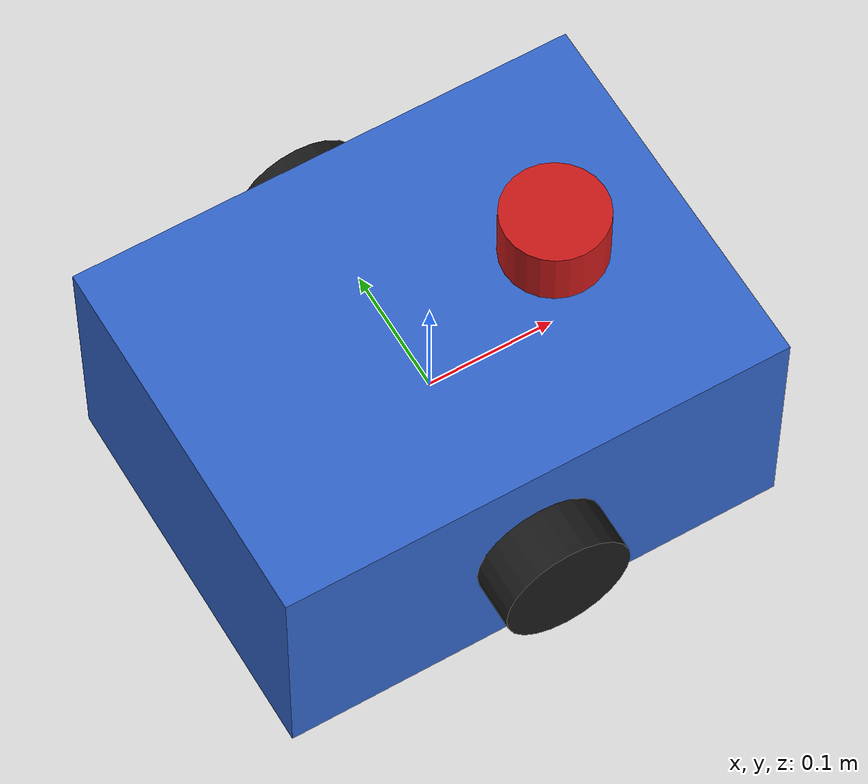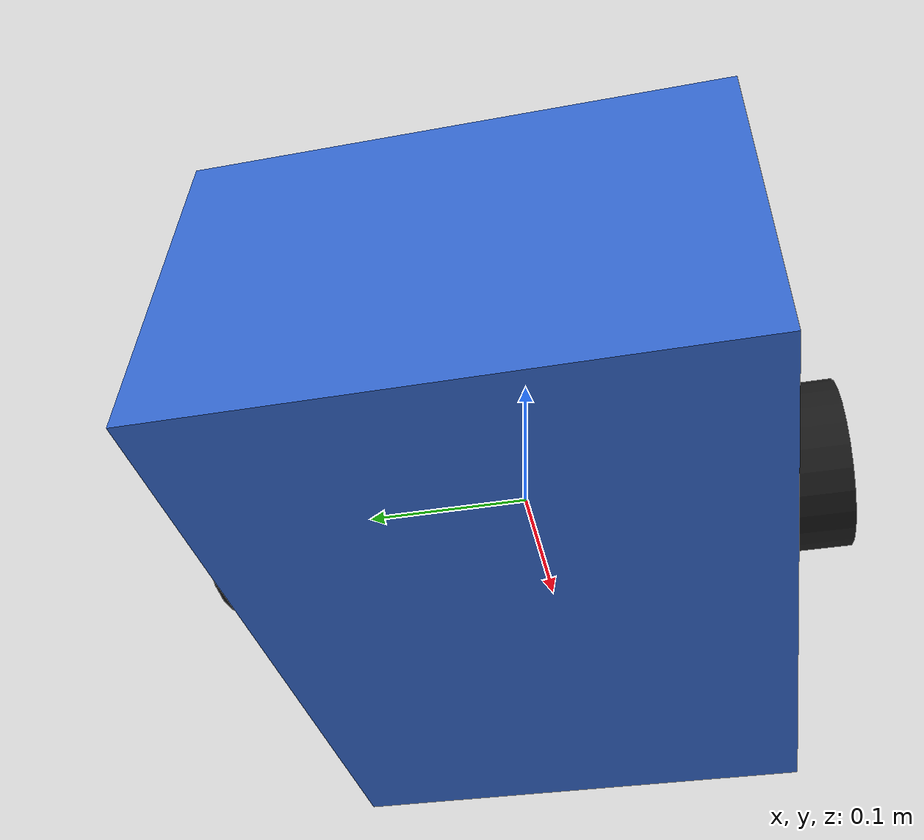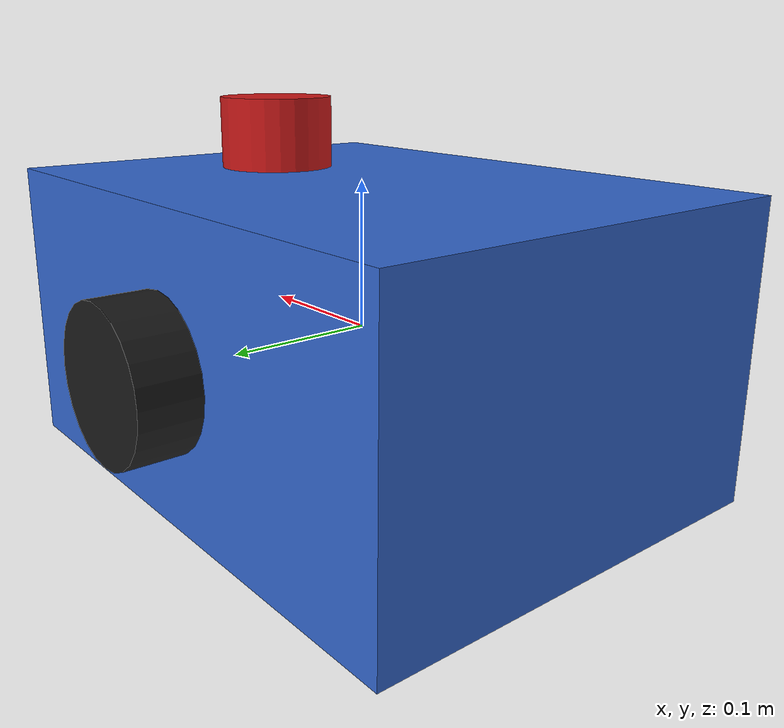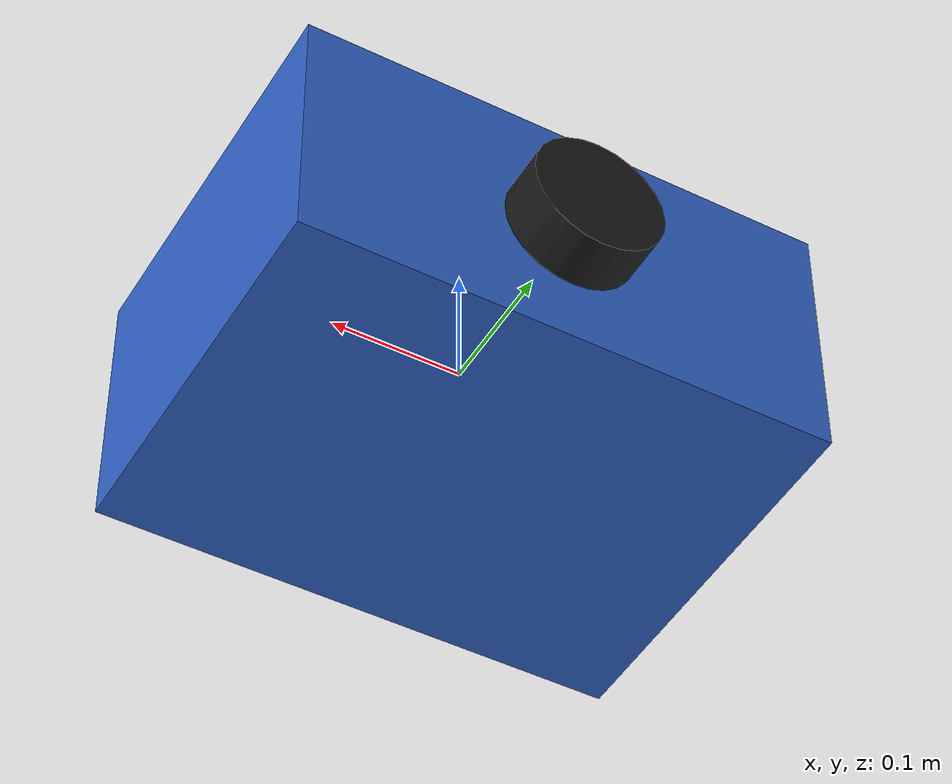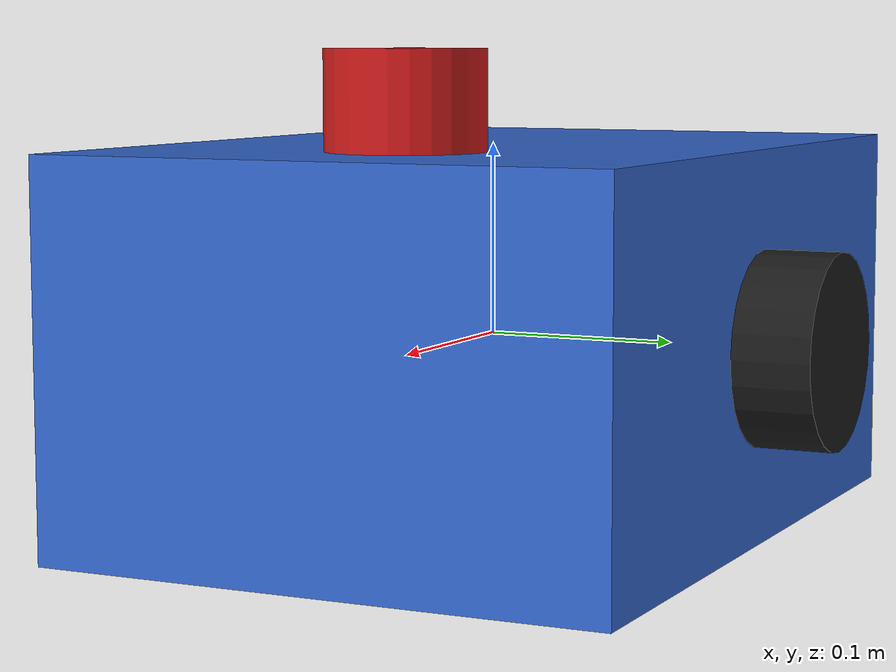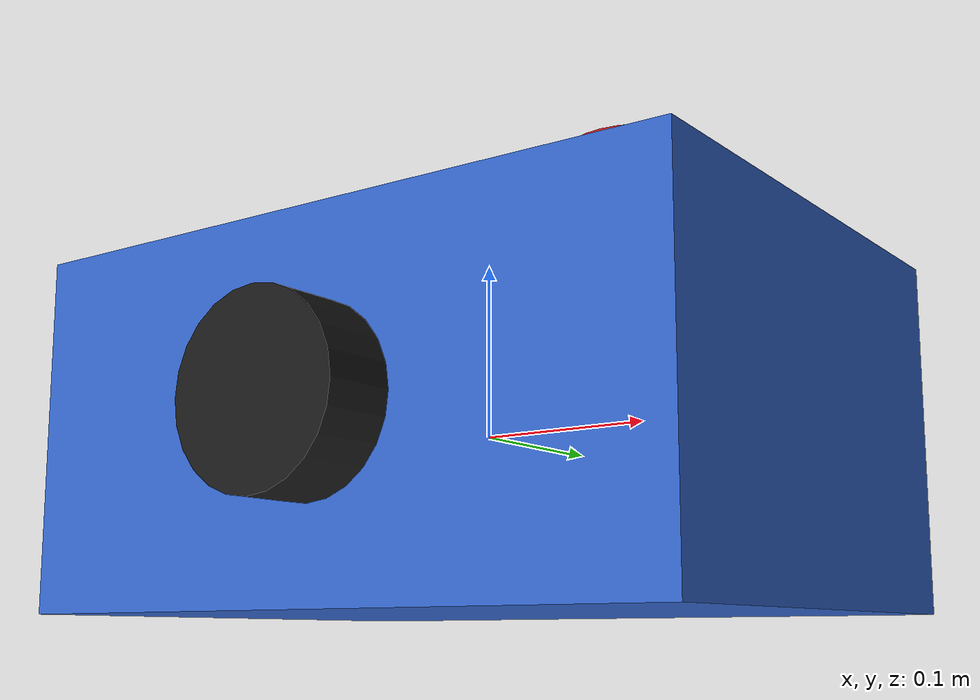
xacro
<?xml version="1.0"?>
<robot name="diffbot" xmlns:xacro="http://www.ros.org/wiki/xacro">

  <!-- ===== 常數定義 ===== -->
  <xacro:property name="base_length" value="0.4" />
  <xacro:property name="base_width" value="0.3" />
  <xacro:property name="base_height" value="0.2" />
  <xacro:property name="wheel_radius" value="0.05" />
  <xacro:property name="wheel_thickness" value="0.04" />

  <!-- ===== Macro: 輪子（左右共用） ===== -->
  <xacro:macro name="wheel" params="prefix y_offset">
    <link name="${prefix}_wheel">
      <visual>
        <geometry>
          <cylinder radius="${wheel_radius}" length="${wheel_thickness}" />
        </geometry>
        <material name="black"><color rgba="0.1 0.1 0.1 1.0" /></material>
      </visual>
      <collision>
        <geometry>
          <cylinder radius="${wheel_radius}" length="${wheel_thickness}" />
        </geometry>
      </collision>
      <inertial>
        <mass value="0.5" />
        <inertia ixx="0.001" ixy="0" ixz="0" iyy="0.001" iyz="0" izz="0.001" />
      </inertial>
    </link>

    <joint name="${prefix}_wheel_joint" type="continuous">
      <parent link="base_link" />
      <child link="${prefix}_wheel" />
      <!-- xyz: 輪子相對 base_link 的位置 -->
      <origin xyz="0 ${y_offset} 0" rpy="-1.5708 0 0" />
      <axis xyz="0 0 1" />
    </joint>
  </xacro:macro>

  <!-- ===== base_link（主體） ===== -->
  <link name="base_link">
    <visual>
      <geometry>
        <box size="${base_length} ${base_width} ${base_height}" />
      </geometry>
      <material name="blue"><color rgba="0.2 0.4 0.8 1.0" /></material>
    </visual>
    <collision>
      <geometry>
        <box size="${base_length} ${base_width} ${base_height}" />
      </geometry>
    </collision>
    <inertial>
      <mass value="5.0" />
      <inertia ixx="0.1" ixy="0" ixz="0" iyy="0.1" iyz="0" izz="0.1" />
    </inertial>
  </link>

  <!-- 用 macro 生成兩個輪子 -->
  <xacro:wheel prefix="left" y_offset="${base_width/2 + wheel_thickness/2}" />
  <xacro:wheel prefix="right" y_offset="-${base_width/2 + wheel_thickness/2}" />

  <!-- ===== lidar（光達） ===== -->
  <link name="lidar_link">
    <visual>
      <geometry>
        <cylinder radius="0.04" length="0.05" />
      </geometry>
      <material name="red"><color rgba="0.8 0.1 0.1 1.0" /></material>
    </visual>
  </link>

  <joint name="lidar_joint" type="fixed">
    <parent link="base_link" />
    <child link="lidar_link" />
    <!-- 光達裝在車頂正中央偏前 -->
    <origin xyz="0.1 0 ${base_height/2 + 0.025}" rpy="0 0 0" />
  </joint>

</robot>
